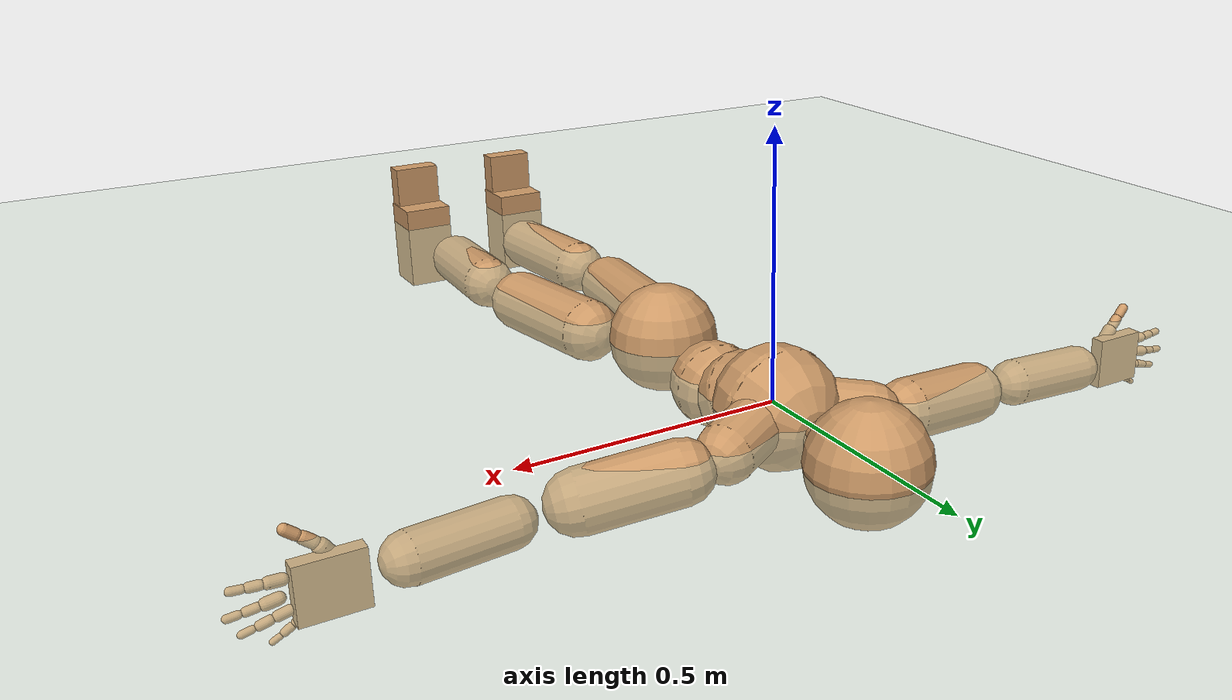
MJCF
<mujoco model="humanoid">
  <compiler coordinate="local"/>
  <default>
    <joint damping="0.0" armature="0.01" stiffness="0.0" limited="true"/>
    <geom conaffinity="1" condim="3" contype="7" margin="0.001" rgba="0.8 0.6 .4 1"/>
  </default>
  <asset>
    <texture type="skybox" builtin="gradient" rgb1=".4 .5 .6" rgb2="0 0 0" width="100" height="100"/>
    <texture builtin="flat" height="1278" mark="cross" markrgb="1 1 1" name="texgeom" random="0.01" rgb1="0.8 0.6 0.4" rgb2="0.8 0.6 0.4" type="cube" width="127"/>
    <texture builtin="checker" height="100" name="texplane" rgb1="0 0 0" rgb2="0.8 0.8 0.8" type="2d" width="100"/>
    <material name="MatPlane" reflectance="0.5" shininess="1" specular="1" texrepeat="60 60" texture="texplane"/>
    <material name="geom" texture="texgeom" texuniform="true"/>
  </asset>
  <worldbody>
    <light cutoff="100" diffuse="1 1 1" dir="-0 0 -1.3" directional="true" exponent="1" pos="0 0 1.3" specular=".1 .1 .1"/>
    <geom conaffinity="1" condim="3" name="floor" pos="0 0 0" rgba="0.8 0.9 0.8 1" size="100 100 .2" type="plane" material="MatPlane"/>
    <body name="Pelvis" pos="0.0031 -0.3905 -0.0025">
      <freejoint name="Pelvis"/>
      <geom type="sphere" contype="1" conaffinity="1" density="4629.6296296296305" size="0.1097" pos="0.0000 0.0000 0.0000" name="Pelvis"/>
      <body name="L_Hip" pos="0.0624 -0.1037 -0.0301">
        <joint name="L_Hip_x" type="hinge" pos="0 0 0" axis="1 0 0" user="250 2.5 1 500 10 2" armature="0.01" range="-90.0000 90.0000" damping="0" stiffness="0"/>
        <joint name="L_Hip_y" type="hinge" pos="0 0 0" axis="0 1 0" user="250 2.5 1 500 10 2" armature="0.01" range="-90.0000 90.0000" damping="0" stiffness="0"/>
        <joint name="L_Hip_z" type="hinge" pos="0 0 0" axis="0 0 1" user="250 2.5 1 500 10 2" armature="0.01" range="-90.0000 90.0000" damping="0" stiffness="0"/>
        <geom type="capsule" contype="1" conaffinity="1" density="2040.816327" fromto="0.0126 -0.0875 -0.0019 0.0504 -0.3499 -0.0076" size="0.0657" name="L_Hip"/>
        <body name="L_Knee" pos="0.0629 -0.4373 -0.0096">
          <joint name="L_Knee_x" type="hinge" pos="0 0 0" axis="1 0 0" user="250 2.5 1 500 10 2" armature="0.01" range="-180.0000 180.0000" damping="0" stiffness="0"/>
          <joint name="L_Knee_y" type="hinge" pos="0 0 0" axis="0 1 0" user="250 2.5 1 500 10 2" armature="0.01" range="-5.6250 5.6250" damping="0" stiffness="0"/>
          <joint name="L_Knee_z" type="hinge" pos="0 0 0" axis="0 0 1" user="250 2.5 1 500 10 2" armature="0.01" range="-5.6250 5.6250" damping="0" stiffness="0"/>
          <geom type="capsule" contype="1" conaffinity="1" density="1234.567901" fromto="-0.0095 -0.0943 -0.0073 -0.0380 -0.3774 -0.0291" size="0.0583" name="L_Knee"/>
          <body name="L_Ankle" pos="-0.0475 -0.4717 -0.0364">
            <joint name="L_Ankle_x" type="hinge" pos="0 0 0" axis="1 0 0" user="150 2.5 1 500 10 2" armature="0.01" range="-90.0000 90.0000" damping="0" stiffness="0"/>
            <joint name="L_Ankle_y" type="hinge" pos="0 0 0" axis="0 1 0" user="150 2.5 1 500 10 2" armature="0.01" range="-90.0000 90.0000" damping="0" stiffness="0"/>
            <joint name="L_Ankle_z" type="hinge" pos="0 0 0" axis="0 0 1" user="150 2.5 1 500 10 2" armature="0.01" range="-90.0000 90.0000" damping="0" stiffness="0"/>
            <geom type="box" density="453.221536" pos="0.0464 -0.0357 0.0263" size="0.0557 0.0532 0.098" quat="1.0000 0.0000 0.0000 0.0000" name="L_Ankle"/>
            <body name="L_Toe" pos="0.0537 -0.07 0.1341">
              <joint name="L_Toe_x" type="hinge" pos="0 0 0" axis="1 0 0" user="150 1 1 500 1 1" armature="0.01" range="-90.0000 90.0000" damping="0" stiffness="0"/>
              <joint name="L_Toe_y" type="hinge" pos="0 0 0" axis="0 1 0" user="150 1 1 500 1 1" armature="0.01" range="-45.0000 45.0000" damping="0" stiffness="0"/>
              <joint name="L_Toe_z" type="hinge" pos="0 0 0" axis="0 0 1" user="150 1 1 500 1 1" armature="0.01" range="-45.0000 45.0000" damping="0" stiffness="0"/>
              <geom type="box" density="420.681294" pos="-0.0074 0.0035 0.0290" size="0.0531 0.0224 0.0555" quat="1.0000 0.0000 0.0000 0.0000" name="L_Toe"/>
            </body>
          </body>
        </body>
      </body>
      <body name="R_Hip" pos="-0.0676 -0.1165 -0.0241">
        <joint name="R_Hip_x" type="hinge" pos="0 0 0" axis="1 0 0" user="250 2.5 1 500 10 2" armature="0.01" range="-90.0000 90.0000" damping="0" stiffness="0"/>
        <joint name="R_Hip_y" type="hinge" pos="0 0 0" axis="0 1 0" user="250 2.5 1 500 10 2" armature="0.01" range="-90.0000 90.0000" damping="0" stiffness="0"/>
        <joint name="R_Hip_z" type="hinge" pos="0 0 0" axis="0 0 1" user="250 2.5 1 500 10 2" armature="0.01" range="-90.0000 90.0000" damping="0" stiffness="0"/>
        <geom type="capsule" contype="1" conaffinity="1" density="2040.816327" fromto="-0.0103 -0.0836 -0.0037 -0.0413 -0.3346 -0.0147" size="0.0648" name="R_Hip"/>
        <body name="R_Knee" pos="-0.0516 -0.4182 -0.0184">
          <joint name="R_Knee_x" type="hinge" pos="0 0 0" axis="1 0 0" user="250 2.5 1 500 10 2" armature="0.01" range="-180.0000 180.0000" damping="0" stiffness="0"/>
          <joint name="R_Knee_y" type="hinge" pos="0 0 0" axis="0 1 0" user="250 2.5 1 500 10 2" armature="0.01" range="-5.6250 5.6250" damping="0" stiffness="0"/>
          <joint name="R_Knee_z" type="hinge" pos="0 0 0" axis="0 0 1" user="250 2.5 1 500 10 2" armature="0.01" range="-5.6250 5.6250" damping="0" stiffness="0"/>
          <geom type="capsule" contype="1" conaffinity="1" density="1234.567901" fromto="0.0033 -0.0963 -0.0046 0.0133 -0.3852 -0.0184" size="0.06" name="R_Knee"/>
          <body name="R_Ankle" pos="0.0166 -0.4815 -0.023">
            <joint name="R_Ankle_x" type="hinge" pos="0 0 0" axis="1 0 0" user="150 1 1 500 10 2" armature="0.01" range="-90.0000 90.0000" damping="0" stiffness="0"/>
            <joint name="R_Ankle_y" type="hinge" pos="0 0 0" axis="0 1 0" user="150 1 1 500 10 2" armature="0.01" range="-90.0000 90.0000" damping="0" stiffness="0"/>
            <joint name="R_Ankle_z" type="hinge" pos="0 0 0" axis="0 0 1" user="150 1 1 500 10 2" armature="0.01" range="-90.0000 90.0000" damping="0" stiffness="0"/>
            <geom type="box" density="453.206679" pos="-0.0276 -0.0323 0.0159" size="0.0557 0.0532 0.098" quat="1.0000 0.0000 0.0000 0.0000" name="R_Ankle"/>
            <body name="R_Toe" pos="-0.0435 -0.0693 0.1348">
              <joint name="R_Toe_x" type="hinge" pos="0 0 0" axis="1 0 0" user="150 1 1 500 1 1" armature="0.01" range="-90.0000 90.0000" damping="0" stiffness="0"/>
              <joint name="R_Toe_y" type="hinge" pos="0 0 0" axis="0 1 0" user="150 1 1 500 1 1" armature="0.01" range="-45.0000 45.0000" damping="0" stiffness="0"/>
              <joint name="R_Toe_z" type="hinge" pos="0 0 0" axis="0 0 1" user="150 1 1 500 1 1" armature="0.01" range="-45.0000 45.0000" damping="0" stiffness="0"/>
              <geom type="box" density="420.68795" pos="0.0159 0.0061 0.0179" size="0.0531 0.0224 0.0555" quat="1.0000 0.0000 0.0000 0.0000" name="R_Toe"/>
            </body>
          </body>
        </body>
      </body>
      <body name="Torso" pos="-0.0032 0.125 -0.0279">
        <joint name="Torso_x" type="hinge" pos="0 0 0" axis="1 0 0" user="500 5 1 500 10 2" armature="0.01" range="-60.0000 60.0000" damping="0" stiffness="0"/>
        <joint name="Torso_y" type="hinge" pos="0 0 0" axis="0 1 0" user="500 5 1 500 10 2" armature="0.01" range="-60.0000 60.0000" damping="0" stiffness="0"/>
        <joint name="Torso_z" type="hinge" pos="0 0 0" axis="0 0 1" user="500 5 1 500 10 2" armature="0.01" range="-60.0000 60.0000" damping="0" stiffness="0"/>
        <geom type="capsule" contype="1" conaffinity="1" density="2040.816327" fromto="0.0052 0.0683 -0.0015 0.0064 0.0835 -0.0018" size="0.0824" name="Torso"/>
        <body name="Spine" pos="0.0117 0.1518 -0.0033">
          <joint name="Spine_x" type="hinge" pos="0 0 0" axis="1 0 0" user="500 5 1 500 10 2" armature="0.01" range="-60.0000 60.0000" damping="0" stiffness="0"/>
          <joint name="Spine_y" type="hinge" pos="0 0 0" axis="0 1 0" user="500 5 1 500 10 2" armature="0.01" range="-60.0000 60.0000" damping="0" stiffness="0"/>
          <joint name="Spine_z" type="hinge" pos="0 0 0" axis="0 0 1" user="500 5 1 500 10 2" armature="0.01" range="-60.0000 60.0000" damping="0" stiffness="0"/>
          <geom type="capsule" contype="1" conaffinity="1" density="2040.816327" fromto="-0.0058 0.0282 0.0146 -0.0071 0.0345 0.0178" size="0.087" name="Spine"/>
          <body name="Chest" pos="-0.0129 0.0627 0.0324">
            <joint name="Chest_x" type="hinge" pos="0 0 0" axis="1 0 0" user="500 5 1 500 10 2" armature="0.01" range="-60.0000 60.0000" damping="0" stiffness="0"/>
            <joint name="Chest_y" type="hinge" pos="0 0 0" axis="0 1 0" user="500 5 1 500 10 2" armature="0.01" range="-60.0000 60.0000" damping="0" stiffness="0"/>
            <joint name="Chest_z" type="hinge" pos="0 0 0" axis="0 0 1" user="500 5 1 500 10 2" armature="0.01" range="-60.0000 60.0000" damping="0" stiffness="0"/>
            <geom type="capsule" contype="1" conaffinity="1" density="2040.816327" fromto="-0.0023 0.0552 -0.0052 -0.0028 0.0674 -0.0064" size="0.1147" name="Chest"/>
            <body name="Neck" pos="-0.0136 0.1811 -0.0235">
              <joint name="Neck_x" type="hinge" pos="0 0 0" axis="1 0 0" user="150 1 1 250 50 4" armature="0.01" range="-180.0000 180.0000" damping="0" stiffness="0"/>
              <joint name="Neck_y" type="hinge" pos="0 0 0" axis="0 1 0" user="150 1 1 250 50 4" armature="0.01" range="-180.0000 180.0000" damping="0" stiffness="0"/>
              <joint name="Neck_z" type="hinge" pos="0 0 0" axis="0 0 1" user="150 1 1 250 50 4" armature="0.01" range="-180.0000 180.0000" damping="0" stiffness="0"/>
              <geom type="capsule" contype="1" conaffinity="1" density="1000" fromto="0.0056 0.0336 0.0063 0.0225 0.1344 0.0254" size="0.0464" name="Neck"/>
              <body name="Head" pos="0.0281 0.1681 0.0317">
                <joint name="Head_x" type="hinge" pos="0 0 0" axis="1 0 0" user="150 1 1 250 50 4" armature="0.01" range="-90.0000 90.0000" damping="0" stiffness="0"/>
                <joint name="Head_y" type="hinge" pos="0 0 0" axis="0 1 0" user="150 1 1 250 50 4" armature="0.01" range="-90.0000 90.0000" damping="0" stiffness="0"/>
                <joint name="Head_z" type="hinge" pos="0 0 0" axis="0 0 1" user="150 1 1 250 50 4" armature="0.01" range="-90.0000 90.0000" damping="0" stiffness="0"/>
                <geom type="sphere" contype="1" conaffinity="1" density="1000" size="0.1088" pos="0.0000 0.0000 0.0000" name="Head"/>
              </body>
            </body>
            <body name="L_Thorax" pos="0.0506 0.0939 -0.0019">
              <joint name="L_Thorax_x" type="hinge" pos="0 0 0" axis="1 0 0" user="200 2 1 500 50 4" armature="0.01" range="-180.0000 180.0000" damping="0" stiffness="0"/>
              <joint name="L_Thorax_y" type="hinge" pos="0 0 0" axis="0 1 0" user="200 2 1 500 50 4" armature="0.01" range="-180.0000 180.0000" damping="0" stiffness="0"/>
              <joint name="L_Thorax_z" type="hinge" pos="0 0 0" axis="0 0 1" user="200 2 1 500 50 4" armature="0.01" range="-180.0000 180.0000" damping="0" stiffness="0"/>
              <geom type="capsule" contype="1" conaffinity="1" density="1000" fromto="0.0270 0.0130 -0.0045 0.1080 0.0522 -0.0179" size="0.0551" name="L_Thorax"/>
              <body name="L_Shoulder" pos="0.1349 0.0652 -0.0224">
                <joint name="L_Shoulder_x" type="hinge" pos="0 0 0" axis="1 0 0" user="200 2 1 500 50 4" armature="0.01" range="-180.0000 180.0000" damping="0" stiffness="0"/>
                <joint name="L_Shoulder_y" type="hinge" pos="0 0 0" axis="0 1 0" user="200 2 1 500 50 4" armature="0.01" range="-180.0000 180.0000" damping="0" stiffness="0"/>
                <joint name="L_Shoulder_z" type="hinge" pos="0 0 0" axis="0 0 1" user="200 2 1 500 50 4" armature="0.01" range="-180.0000 180.0000" damping="0" stiffness="0"/>
                <geom type="capsule" contype="1" conaffinity="1" density="1000" fromto="0.0564 -0.0163 -0.0095 0.2257 -0.0652 -0.0378" size="0.0588" name="L_Shoulder"/>
                <body name="L_Elbow" pos="0.2821 -0.0815 -0.0473">
                  <joint name="L_Elbow_x" type="hinge" pos="0 0 0" axis="1 0 0" user="150 1 1 150 10 2" armature="0.01" range="-720.0000 720.0000" damping="0" stiffness="0"/>
                  <joint name="L_Elbow_y" type="hinge" pos="0 0 0" axis="0 1 0" user="150 1 1 150 10 2" armature="0.01" range="-720.0000 720.0000" damping="0" stiffness="0"/>
                  <joint name="L_Elbow_z" type="hinge" pos="0 0 0" axis="0 0 1" user="150 1 1 150 10 2" armature="0.01" range="-720.0000 720.0000" damping="0" stiffness="0"/>
                  <geom type="capsule" contype="1" conaffinity="1" density="1000" fromto="0.0582 0.0057 -0.0001 0.2326 0.0229 -0.0004" size="0.0453" name="L_Elbow"/>
                  <body name="L_Wrist" pos="0.2908 0.0286 -0.0005">
                    <joint name="L_Wrist_x" type="hinge" pos="0 0 0" axis="1 0 0" user="100 1 1 150 1 1" armature="0.01" range="-180.0000 180.0000" damping="0" stiffness="0"/>
                    <joint name="L_Wrist_y" type="hinge" pos="0 0 0" axis="0 1 0" user="100 1 1 150 1 1" armature="0.01" range="-180.0000 180.0000" damping="0" stiffness="0"/>
                    <joint name="L_Wrist_z" type="hinge" pos="0 0 0" axis="0 0 1" user="100 1 1 150 1 1" armature="0.01" range="-180.0000 180.0000" damping="0" stiffness="0"/>
                    <geom type="box" density="1204.915855" pos="0.0618 -0.0019 -0.0035" size="0.057 0.0139 0.0513" quat="1.0000 0.0000 0.0000 0.0000" name="L_Wrist"/>
                    <body name="L_Index1" pos="0.1201 -0.0096 0.0213">
                      <joint name="L_Index1_x" type="hinge" pos="0 0 0" axis="1 0 0" user="100 10 1 150" armature="0.01" range="-180.0000 180.0000" damping="0" stiffness="0"/>
                      <joint name="L_Index1_y" type="hinge" pos="0 0 0" axis="0 1 0" user="100 10 1 150" armature="0.01" range="-180.0000 180.0000" damping="0" stiffness="0"/>
                      <joint name="L_Index1_z" type="hinge" pos="0 0 0" axis="0 0 1" user="100 10 1 150" armature="0.01" range="-180.0000 180.0000" damping="0" stiffness="0"/>
                      <geom type="capsule" contype="1" conaffinity="1" density="1000" fromto="0.0070 0.0005 0.0006 0.0280 0.0022 0.0023" size="0.0101" name="L_Index1"/>
                      <body name="L_Index2" pos="0.035 0.0027 0.0029">
                        <joint name="L_Index2_x" type="hinge" pos="0 0 0" axis="1 0 0" user="100 10 1 150" armature="0.01" range="-180.0000 180.0000" damping="0" stiffness="0"/>
                        <joint name="L_Index2_y" type="hinge" pos="0 0 0" axis="0 1 0" user="100 10 1 150" armature="0.01" range="-180.0000 180.0000" damping="0" stiffness="0"/>
                        <joint name="L_Index2_z" type="hinge" pos="0 0 0" axis="0 0 1" user="100 10 1 150" armature="0.01" range="-180.0000 180.0000" damping="0" stiffness="0"/>
                        <geom type="capsule" contype="1" conaffinity="1" density="1000" fromto="0.0049 -0.0005 -0.0001 0.0197 -0.0021 -0.0002" size="0.0084" name="L_Index2"/>
                        <body name="L_Index3" pos="0.0246 -0.0026 -0.0003">
                          <joint name="L_Index3_x" type="hinge" pos="0 0 0" axis="1 0 0" user="100 10 1 150" armature="0.01" range="-180.0000 180.0000" damping="0" stiffness="0"/>
                          <joint name="L_Index3_y" type="hinge" pos="0 0 0" axis="0 1 0" user="100 10 1 150" armature="0.01" range="-180.0000 180.0000" damping="0" stiffness="0"/>
                          <joint name="L_Index3_z" type="hinge" pos="0 0 0" axis="0 0 1" user="100 10 1 150" armature="0.01" range="-180.0000 180.0000" damping="0" stiffness="0"/>
                          <geom type="capsule" contype="1" conaffinity="1" density="1000" fromto="0.0053 -0.0001 0.0003 0.0213 -0.0005 0.0014" size="0.0071" name="L_Index3"/>
                        </body>
                      </body>
                    </body>
                    <body name="L_Middle1" pos="0.129 -0.0069 -0.0048">
                      <joint name="L_Middle1_x" type="hinge" pos="0 0 0" axis="1 0 0" user="100 10 1 150" armature="0.01" range="-180.0000 180.0000" damping="0" stiffness="0"/>
                      <joint name="L_Middle1_y" type="hinge" pos="0 0 0" axis="0 1 0" user="100 10 1 150" armature="0.01" range="-180.0000 180.0000" damping="0" stiffness="0"/>
                      <joint name="L_Middle1_z" type="hinge" pos="0 0 0" axis="0 0 1" user="100 10 1 150" armature="0.01" range="-180.0000 180.0000" damping="0" stiffness="0"/>
                      <geom type="capsule" contype="1" conaffinity="1" density="1000" fromto="0.0067 0.0002 -0.0009 0.0269 0.0008 -0.0035" size="0.0104" name="L_Middle1"/>
                      <body name="L_Middle2" pos="0.0337 0.001 -0.0044">
                        <joint name="L_Middle2_x" type="hinge" pos="0 0 0" axis="1 0 0" user="100 10 1 150" armature="0.01" range="-180.0000 180.0000" damping="0" stiffness="0"/>
                        <joint name="L_Middle2_y" type="hinge" pos="0 0 0" axis="0 1 0" user="100 10 1 150" armature="0.01" range="-180.0000 180.0000" damping="0" stiffness="0"/>
                        <joint name="L_Middle2_z" type="hinge" pos="0 0 0" axis="0 0 1" user="100 10 1 150" armature="0.01" range="-180.0000 180.0000" damping="0" stiffness="0"/>
                        <geom type="capsule" contype="1" conaffinity="1" density="1000" fromto="0.0052 -0.0005 -0.0009 0.0207 -0.0019 -0.0037" size="0.0077" name="L_Middle2"/>
                        <body name="L_Middle3" pos="0.0258 -0.0023 -0.0046">
                          <joint name="L_Middle3_x" type="hinge" pos="0 0 0" axis="1 0 0" user="100 10 1 150" armature="0.01" range="-180.0000 180.0000" damping="0" stiffness="0"/>
                          <joint name="L_Middle3_y" type="hinge" pos="0 0 0" axis="0 1 0" user="100 10 1 150" armature="0.01" range="-180.0000 180.0000" damping="0" stiffness="0"/>
                          <joint name="L_Middle3_z" type="hinge" pos="0 0 0" axis="0 0 1" user="100 10 1 150" armature="0.01" range="-180.0000 180.0000" damping="0" stiffness="0"/>
                          <geom type="capsule" contype="1" conaffinity="1" density="1000" fromto="0.0056 -0.0001 -0.0005 0.0223 -0.0003 -0.0021" size="0.0068" name="L_Middle3"/>
                        </body>
                      </body>
                    </body>
                    <body name="L_Pinky1" pos="0.1006 -0.016 -0.0491">
                      <joint name="L_Pinky1_x" type="hinge" pos="0 0 0" axis="1 0 0" user="100 10 1 150" armature="0.01" range="-180.0000 180.0000" damping="0" stiffness="0"/>
                      <joint name="L_Pinky1_y" type="hinge" pos="0 0 0" axis="0 1 0" user="100 10 1 150" armature="0.01" range="-180.0000 180.0000" damping="0" stiffness="0"/>
                      <joint name="L_Pinky1_z" type="hinge" pos="0 0 0" axis="0 0 1" user="100 10 1 150" armature="0.01" range="-180.0000 180.0000" damping="0" stiffness="0"/>
                      <geom type="capsule" contype="1" conaffinity="1" density="1000" fromto="0.0035 -0.0003 -0.0026 0.0140 -0.0010 -0.0104" size="0.0073" name="L_Pinky1"/>
                      <body name="L_Pinky2" pos="0.0176 -0.0013 -0.0129">
                        <joint name="L_Pinky2_x" type="hinge" pos="0 0 0" axis="1 0 0" user="100 10 1 150" armature="0.01" range="-180.0000 180.0000" damping="0" stiffness="0"/>
                        <joint name="L_Pinky2_y" type="hinge" pos="0 0 0" axis="0 1 0" user="100 10 1 150" armature="0.01" range="-180.0000 180.0000" damping="0" stiffness="0"/>
                        <joint name="L_Pinky2_z" type="hinge" pos="0 0 0" axis="0 0 1" user="100 10 1 150" armature="0.01" range="-180.0000 180.0000" damping="0" stiffness="0"/>
                        <geom type="capsule" contype="1" conaffinity="1" density="1000" fromto="0.0034 -0.0004 -0.0024 0.0138 -0.0016 -0.0096" size="0.007" name="L_Pinky2"/>
                        <body name="L_Pinky3" pos="0.0172 -0.002 -0.012">
                          <joint name="L_Pinky3_x" type="hinge" pos="0 0 0" axis="1 0 0" user="100 10 1 150" armature="0.01" range="-180.0000 180.0000" damping="0" stiffness="0"/>
                          <joint name="L_Pinky3_y" type="hinge" pos="0 0 0" axis="0 1 0" user="100 10 1 150" armature="0.01" range="-180.0000 180.0000" damping="0" stiffness="0"/>
                          <joint name="L_Pinky3_z" type="hinge" pos="0 0 0" axis="0 0 1" user="100 10 1 150" armature="0.01" range="-180.0000 180.0000" damping="0" stiffness="0"/>
                          <geom type="capsule" contype="1" conaffinity="1" density="1000" fromto="0.0038 0.0000 -0.0020 0.0154 0.0000 -0.0080" size="0.0053" name="L_Pinky3"/>
                        </body>
                      </body>
                    </body>
                    <body name="L_Ring1" pos="0.1158 -0.0102 -0.0309">
                      <joint name="L_Ring1_x" type="hinge" pos="0 0 0" axis="1 0 0" user="100 10 1 150" armature="0.01" range="-180.0000 180.0000" damping="0" stiffness="0"/>
                      <joint name="L_Ring1_y" type="hinge" pos="0 0 0" axis="0 1 0" user="100 10 1 150" armature="0.01" range="-180.0000 180.0000" damping="0" stiffness="0"/>
                      <joint name="L_Ring1_z" type="hinge" pos="0 0 0" axis="0 0 1" user="100 10 1 150" armature="0.01" range="-180.0000 180.0000" damping="0" stiffness="0"/>
                      <geom type="capsule" contype="1" conaffinity="1" density="1000" fromto="0.0063 0.0003 -0.0011 0.0250 0.0014 -0.0046" size="0.0088" name="L_Ring1"/>
                      <body name="L_Ring2" pos="0.0313 0.0017 -0.0057">
                        <joint name="L_Ring2_x" type="hinge" pos="0 0 0" axis="1 0 0" user="100 10 1 150" armature="0.01" range="-180.0000 180.0000" damping="0" stiffness="0"/>
                        <joint name="L_Ring2_y" type="hinge" pos="0 0 0" axis="0 1 0" user="100 10 1 150" armature="0.01" range="-180.0000 180.0000" damping="0" stiffness="0"/>
                        <joint name="L_Ring2_z" type="hinge" pos="0 0 0" axis="0 0 1" user="100 10 1 150" armature="0.01" range="-180.0000 180.0000" damping="0" stiffness="0"/>
                        <geom type="capsule" contype="1" conaffinity="1" density="1000" fromto="0.0050 -0.0003 -0.0016 0.0201 -0.0013 -0.0063" size="0.0081" name="L_Ring2"/>
                        <body name="L_Ring3" pos="0.0251 -0.0017 -0.0078">
                          <joint name="L_Ring3_x" type="hinge" pos="0 0 0" axis="1 0 0" user="100 10 1 150" armature="0.01" range="-180.0000 180.0000" damping="0" stiffness="0"/>
                          <joint name="L_Ring3_y" type="hinge" pos="0 0 0" axis="0 1 0" user="100 10 1 150" armature="0.01" range="-180.0000 180.0000" damping="0" stiffness="0"/>
                          <joint name="L_Ring3_z" type="hinge" pos="0 0 0" axis="0 0 1" user="100 10 1 150" armature="0.01" range="-180.0000 180.0000" damping="0" stiffness="0"/>
                          <geom type="capsule" contype="1" conaffinity="1" density="1000" fromto="0.0054 0.0001 -0.0012 0.0217 0.0003 -0.0047" size="0.0063" name="L_Ring3"/>
                        </body>
                      </body>
                    </body>
                    <body name="L_Thumb1" pos="0.0494 -0.0209 0.0294">
                      <joint name="L_Thumb1_x" type="hinge" pos="0 0 0" axis="1 0 0" user="100 10 1 150" armature="0.01" range="-180.0000 180.0000" damping="0" stiffness="0"/>
                      <joint name="L_Thumb1_y" type="hinge" pos="0 0 0" axis="0 1 0" user="100 10 1 150" armature="0.01" range="-180.0000 180.0000" damping="0" stiffness="0"/>
                      <joint name="L_Thumb1_z" type="hinge" pos="0 0 0" axis="0 0 1" user="100 10 1 150" armature="0.01" range="-180.0000 180.0000" damping="0" stiffness="0"/>
                      <geom type="capsule" contype="1" conaffinity="1" density="1000" fromto="0.0039 0.0002 0.0056 0.0155 0.0009 0.0224" size="0.0138" name="L_Thumb1"/>
                      <body name="L_Thumb2" pos="0.0194 0.0011 0.028">
                        <joint name="L_Thumb2_x" type="hinge" pos="0 0 0" axis="1 0 0" user="100 10 1 150" armature="0.01" range="-180.0000 180.0000" damping="0" stiffness="0"/>
                        <joint name="L_Thumb2_y" type="hinge" pos="0 0 0" axis="0 1 0" user="100 10 1 150" armature="0.01" range="-180.0000 180.0000" damping="0" stiffness="0"/>
                        <joint name="L_Thumb2_z" type="hinge" pos="0 0 0" axis="0 0 1" user="100 10 1 150" armature="0.01" range="-180.0000 180.0000" damping="0" stiffness="0"/>
                        <geom type="capsule" contype="1" conaffinity="1" density="1000" fromto="0.0046 -0.0011 0.0034 0.0186 -0.0046 0.0137" size="0.0108" name="L_Thumb2"/>
                        <body name="L_Thumb3" pos="0.0232 -0.0057 0.0171">
                          <joint name="L_Thumb3_x" type="hinge" pos="0 0 0" axis="1 0 0" user="100 10 1 150" armature="0.01" range="-180.0000 180.0000" damping="0" stiffness="0"/>
                          <joint name="L_Thumb3_y" type="hinge" pos="0 0 0" axis="0 1 0" user="100 10 1 150" armature="0.01" range="-180.0000 180.0000" damping="0" stiffness="0"/>
                          <joint name="L_Thumb3_z" type="hinge" pos="0 0 0" axis="0 0 1" user="100 10 1 150" armature="0.01" range="-180.0000 180.0000" damping="0" stiffness="0"/>
                          <geom type="capsule" contype="1" conaffinity="1" density="1000" fromto="0.0050 -0.0007 0.0038 0.0202 -0.0030 0.0153" size="0.0097" name="L_Thumb3"/>
                        </body>
                      </body>
                    </body>
                  </body>
                </body>
              </body>
            </body>
            <body name="R_Thorax" pos="-0.0525 0.0928 -0.0095">
              <joint name="R_Thorax_x" type="hinge" pos="0 0 0" axis="1 0 0" user="200 2 1 150 10 2" armature="0.01" range="-180.0000 180.0000" damping="0" stiffness="0"/>
              <joint name="R_Thorax_y" type="hinge" pos="0 0 0" axis="0 1 0" user="200 2 1 150 10 2" armature="0.01" range="-180.0000 180.0000" damping="0" stiffness="0"/>
              <joint name="R_Thorax_z" type="hinge" pos="0 0 0" axis="0 0 1" user="200 2 1 150 10 2" armature="0.01" range="-180.0000 180.0000" damping="0" stiffness="0"/>
              <geom type="capsule" contype="1" conaffinity="1" density="1000" fromto="-0.0235 0.0121 -0.0037 -0.0939 0.0484 -0.0149" size="0.0605" name="R_Thorax"/>
              <body name="R_Shoulder" pos="-0.1174 0.0605 -0.0187">
                <joint name="R_Shoulder_x" type="hinge" pos="0 0 0" axis="1 0 0" user="200 2 1 250 10 2" armature="0.01" range="-180.0000 180.0000" damping="0" stiffness="0"/>
                <joint name="R_Shoulder_y" type="hinge" pos="0 0 0" axis="0 1 0" user="200 2 1 250 10 2" armature="0.01" range="-180.0000 180.0000" damping="0" stiffness="0"/>
                <joint name="R_Shoulder_z" type="hinge" pos="0 0 0" axis="0 0 1" user="200 2 1 250 10 2" armature="0.01" range="-180.0000 180.0000" damping="0" stiffness="0"/>
                <geom type="capsule" contype="1" conaffinity="1" density="1000" fromto="-0.0603 -0.0082 -0.0060 -0.2411 -0.0327 -0.0238" size="0.0588" name="R_Shoulder"/>
                <body name="R_Elbow" pos="-0.3014 -0.0408 -0.0298">
                  <joint name="R_Elbow_x" type="hinge" pos="0 0 0" axis="1 0 0" user="150 1 1 150 10 2" armature="0.01" range="-720.0000 720.0000" damping="0" stiffness="0"/>
                  <joint name="R_Elbow_y" type="hinge" pos="0 0 0" axis="0 1 0" user="150 1 1 150 10 2" armature="0.01" range="-720.0000 720.0000" damping="0" stiffness="0"/>
                  <joint name="R_Elbow_z" type="hinge" pos="0 0 0" axis="0 0 1" user="150 1 1 150 10 2" armature="0.01" range="-720.0000 720.0000" damping="0" stiffness="0"/>
                  <geom type="capsule" contype="1" conaffinity="1" density="1000" fromto="-0.0574 -0.0006 -0.0029 -0.2295 -0.0022 -0.0116" size="0.0457" name="R_Elbow"/>
                  <body name="R_Wrist" pos="-0.2869 -0.0028 -0.0145">
                    <joint name="R_Wrist_x" type="hinge" pos="0 0 0" axis="1 0 0" user="100 1 1 150 1 1" armature="0.01" range="-180.0000 180.0000" damping="0" stiffness="0"/>
                    <joint name="R_Wrist_y" type="hinge" pos="0 0 0" axis="0 1 0" user="100 1 1 150 1 1" armature="0.01" range="-180.0000 180.0000" damping="0" stiffness="0"/>
                    <joint name="R_Wrist_z" type="hinge" pos="0 0 0" axis="0 0 1" user="100 1 1 150 1 1" armature="0.01" range="-180.0000 180.0000" damping="0" stiffness="0"/>
                    <geom type="box" density="1228.841003" pos="-0.0632 -0.0054 -0.0031" size="0.0538 0.0139 0.0513" quat="1.0000 0.0000 0.0000 0.0000" name="R_Wrist"/>
                    <body name="R_Index1" pos="-0.1178 -0.0131 0.0217">
                      <joint name="R_Index1_x" type="hinge" pos="0 0 0" axis="1 0 0" user="100 10 1 150" armature="0.01" range="-180.0000 180.0000" damping="0" stiffness="0"/>
                      <joint name="R_Index1_y" type="hinge" pos="0 0 0" axis="0 1 0" user="100 10 1 150" armature="0.01" range="-180.0000 180.0000" damping="0" stiffness="0"/>
                      <joint name="R_Index1_z" type="hinge" pos="0 0 0" axis="0 0 1" user="100 10 1 150" armature="0.01" range="-180.0000 180.0000" damping="0" stiffness="0"/>
                      <geom type="capsule" contype="1" conaffinity="1" density="1000" fromto="-0.0070 0.0005 0.0006 -0.0280 0.0022 0.0023" size="0.0101" name="R_Index1"/>
                      <body name="R_Index2" pos="-0.035 0.0027 0.0029">
                        <joint name="R_Index2_x" type="hinge" pos="0 0 0" axis="1 0 0" user="100 10 1 150" armature="0.01" range="-180.0000 180.0000" damping="0" stiffness="0"/>
                        <joint name="R_Index2_y" type="hinge" pos="0 0 0" axis="0 1 0" user="100 10 1 150" armature="0.01" range="-180.0000 180.0000" damping="0" stiffness="0"/>
                        <joint name="R_Index2_z" type="hinge" pos="0 0 0" axis="0 0 1" user="100 10 1 150" armature="0.01" range="-180.0000 180.0000" damping="0" stiffness="0"/>
                        <geom type="capsule" contype="1" conaffinity="1" density="1000" fromto="-0.0049 -0.0005 -0.0001 -0.0197 -0.0021 -0.0002" size="0.0084" name="R_Index2"/>
                        <body name="R_Index3" pos="-0.0246 -0.0026 -0.0003">
                          <joint name="R_Index3_x" type="hinge" pos="0 0 0" axis="1 0 0" user="100 10 1 150" armature="0.01" range="-180.0000 180.0000" damping="0" stiffness="0"/>
                          <joint name="R_Index3_y" type="hinge" pos="0 0 0" axis="0 1 0" user="100 10 1 150" armature="0.01" range="-180.0000 180.0000" damping="0" stiffness="0"/>
                          <joint name="R_Index3_z" type="hinge" pos="0 0 0" axis="0 0 1" user="100 10 1 150" armature="0.01" range="-180.0000 180.0000" damping="0" stiffness="0"/>
                          <geom type="capsule" contype="1" conaffinity="1" density="1000" fromto="-0.0045 -0.0001 0.0003 -0.0181 -0.0005 0.0014" size="0.0074" name="R_Index3"/>
                        </body>
                      </body>
                    </body>
                    <body name="R_Middle1" pos="-0.1267 -0.0104 -0.0044">
                      <joint name="R_Middle1_x" type="hinge" pos="0 0 0" axis="1 0 0" user="100 10 1 150" armature="0.01" range="-180.0000 180.0000" damping="0" stiffness="0"/>
                      <joint name="R_Middle1_y" type="hinge" pos="0 0 0" axis="0 1 0" user="100 10 1 150" armature="0.01" range="-180.0000 180.0000" damping="0" stiffness="0"/>
                      <joint name="R_Middle1_z" type="hinge" pos="0 0 0" axis="0 0 1" user="100 10 1 150" armature="0.01" range="-180.0000 180.0000" damping="0" stiffness="0"/>
                      <geom type="capsule" contype="1" conaffinity="1" density="1000" fromto="-0.0067 0.0002 -0.0009 -0.0269 0.0008 -0.0035" size="0.0104" name="R_Middle1"/>
                      <body name="R_Middle2" pos="-0.0337 0.001 -0.0044">
                        <joint name="R_Middle2_x" type="hinge" pos="0 0 0" axis="1 0 0" user="100 10 1 150" armature="0.01" range="-180.0000 180.0000" damping="0" stiffness="0"/>
                        <joint name="R_Middle2_y" type="hinge" pos="0 0 0" axis="0 1 0" user="100 10 1 150" armature="0.01" range="-180.0000 180.0000" damping="0" stiffness="0"/>
                        <joint name="R_Middle2_z" type="hinge" pos="0 0 0" axis="0 0 1" user="100 10 1 150" armature="0.01" range="-180.0000 180.0000" damping="0" stiffness="0"/>
                        <geom type="capsule" contype="1" conaffinity="1" density="1000" fromto="-0.0052 -0.0005 -0.0009 -0.0207 -0.0019 -0.0037" size="0.0077" name="R_Middle2"/>
                        <body name="R_Middle3" pos="-0.0258 -0.0023 -0.0046">
                          <joint name="R_Middle3_x" type="hinge" pos="0 0 0" axis="1 0 0" user="100 10 1 150" armature="0.01" range="-180.0000 180.0000" damping="0" stiffness="0"/>
                          <joint name="R_Middle3_y" type="hinge" pos="0 0 0" axis="0 1 0" user="100 10 1 150" armature="0.01" range="-180.0000 180.0000" damping="0" stiffness="0"/>
                          <joint name="R_Middle3_z" type="hinge" pos="0 0 0" axis="0 0 1" user="100 10 1 150" armature="0.01" range="-180.0000 180.0000" damping="0" stiffness="0"/>
                          <geom type="capsule" contype="1" conaffinity="1" density="1000" fromto="-0.0048 -0.0001 -0.0005 -0.0191 -0.0003 -0.0021" size="0.007" name="R_Middle3"/>
                        </body>
                      </body>
                    </body>
                    <body name="R_Pinky1" pos="-0.0983 -0.0195 -0.0487">
                      <joint name="R_Pinky1_x" type="hinge" pos="0 0 0" axis="1 0 0" user="100 10 1 150" armature="0.01" range="-180.0000 180.0000" damping="0" stiffness="0"/>
                      <joint name="R_Pinky1_y" type="hinge" pos="0 0 0" axis="0 1 0" user="100 10 1 150" armature="0.01" range="-180.0000 180.0000" damping="0" stiffness="0"/>
                      <joint name="R_Pinky1_z" type="hinge" pos="0 0 0" axis="0 0 1" user="100 10 1 150" armature="0.01" range="-180.0000 180.0000" damping="0" stiffness="0"/>
                      <geom type="capsule" contype="1" conaffinity="1" density="1000" fromto="-0.0035 -0.0003 -0.0026 -0.0141 -0.0010 -0.0104" size="0.0073" name="R_Pinky1"/>
                      <body name="R_Pinky2" pos="-0.0176 -0.0013 -0.0129">
                        <joint name="R_Pinky2_x" type="hinge" pos="0 0 0" axis="1 0 0" user="100 10 1 150" armature="0.01" range="-180.0000 180.0000" damping="0" stiffness="0"/>
                        <joint name="R_Pinky2_y" type="hinge" pos="0 0 0" axis="0 1 0" user="100 10 1 150" armature="0.01" range="-180.0000 180.0000" damping="0" stiffness="0"/>
                        <joint name="R_Pinky2_z" type="hinge" pos="0 0 0" axis="0 0 1" user="100 10 1 150" armature="0.01" range="-180.0000 180.0000" damping="0" stiffness="0"/>
                        <geom type="capsule" contype="1" conaffinity="1" density="1000" fromto="-0.0034 -0.0004 -0.0024 -0.0138 -0.0016 -0.0096" size="0.007" name="R_Pinky2"/>
                        <body name="R_Pinky3" pos="-0.0172 -0.002 -0.012">
                          <joint name="R_Pinky3_x" type="hinge" pos="0 0 0" axis="1 0 0" user="100 10 1 150" armature="0.01" range="-180.0000 180.0000" damping="0" stiffness="0"/>
                          <joint name="R_Pinky3_y" type="hinge" pos="0 0 0" axis="0 1 0" user="100 10 1 150" armature="0.01" range="-180.0000 180.0000" damping="0" stiffness="0"/>
                          <joint name="R_Pinky3_z" type="hinge" pos="0 0 0" axis="0 0 1" user="100 10 1 150" armature="0.01" range="-180.0000 180.0000" damping="0" stiffness="0"/>
                          <geom type="capsule" contype="1" conaffinity="1" density="1000" fromto="-0.0030 0.0000 -0.0020 -0.0122 0.0000 -0.0080" size="0.0056" name="R_Pinky3"/>
                        </body>
                      </body>
                    </body>
                    <body name="R_Ring1" pos="-0.1135 -0.0137 -0.0305">
                      <joint name="R_Ring1_x" type="hinge" pos="0 0 0" axis="1 0 0" user="100 10 1 150" armature="0.01" range="-180.0000 180.0000" damping="0" stiffness="0"/>
                      <joint name="R_Ring1_y" type="hinge" pos="0 0 0" axis="0 1 0" user="100 10 1 150" armature="0.01" range="-180.0000 180.0000" damping="0" stiffness="0"/>
                      <joint name="R_Ring1_z" type="hinge" pos="0 0 0" axis="0 0 1" user="100 10 1 150" armature="0.01" range="-180.0000 180.0000" damping="0" stiffness="0"/>
                      <geom type="capsule" contype="1" conaffinity="1" density="1000" fromto="-0.0063 0.0003 -0.0011 -0.0250 0.0014 -0.0046" size="0.0088" name="R_Ring1"/>
                      <body name="R_Ring2" pos="-0.0313 0.0017 -0.0057">
                        <joint name="R_Ring2_x" type="hinge" pos="0 0 0" axis="1 0 0" user="100 10 1 150" armature="0.01" range="-180.0000 180.0000" damping="0" stiffness="0"/>
                        <joint name="R_Ring2_y" type="hinge" pos="0 0 0" axis="0 1 0" user="100 10 1 150" armature="0.01" range="-180.0000 180.0000" damping="0" stiffness="0"/>
                        <joint name="R_Ring2_z" type="hinge" pos="0 0 0" axis="0 0 1" user="100 10 1 150" armature="0.01" range="-180.0000 180.0000" damping="0" stiffness="0"/>
                        <geom type="capsule" contype="1" conaffinity="1" density="1000" fromto="-0.0050 -0.0003 -0.0016 -0.0201 -0.0013 -0.0062" size="0.0081" name="R_Ring2"/>
                        <body name="R_Ring3" pos="-0.0251 -0.0017 -0.0078">
                          <joint name="R_Ring3_x" type="hinge" pos="0 0 0" axis="1 0 0" user="100 10 1 150" armature="0.01" range="-180.0000 180.0000" damping="0" stiffness="0"/>
                          <joint name="R_Ring3_y" type="hinge" pos="0 0 0" axis="0 1 0" user="100 10 1 150" armature="0.01" range="-180.0000 180.0000" damping="0" stiffness="0"/>
                          <joint name="R_Ring3_z" type="hinge" pos="0 0 0" axis="0 0 1" user="100 10 1 150" armature="0.01" range="-180.0000 180.0000" damping="0" stiffness="0"/>
                          <geom type="capsule" contype="1" conaffinity="1" density="1000" fromto="-0.0046 0.0001 -0.0012 -0.0185 0.0003 -0.0046" size="0.0066" name="R_Ring3"/>
                        </body>
                      </body>
                    </body>
                    <body name="R_Thumb1" pos="-0.0472 -0.0244 0.0298">
                      <joint name="R_Thumb1_x" type="hinge" pos="0 0 0" axis="1 0 0" user="100 10 1 150" armature="0.01" range="-180.0000 180.0000" damping="0" stiffness="0"/>
                      <joint name="R_Thumb1_y" type="hinge" pos="0 0 0" axis="0 1 0" user="100 10 1 150" armature="0.01" range="-180.0000 180.0000" damping="0" stiffness="0"/>
                      <joint name="R_Thumb1_z" type="hinge" pos="0 0 0" axis="0 0 1" user="100 10 1 150" armature="0.01" range="-180.0000 180.0000" damping="0" stiffness="0"/>
                      <geom type="capsule" contype="1" conaffinity="1" density="1000" fromto="-0.0039 0.0002 0.0056 -0.0155 0.0009 0.0224" size="0.0138" name="R_Thumb1"/>
                      <body name="R_Thumb2" pos="-0.0194 0.0011 0.028">
                        <joint name="R_Thumb2_x" type="hinge" pos="0 0 0" axis="1 0 0" user="100 10 1 150" armature="0.01" range="-180.0000 180.0000" damping="0" stiffness="0"/>
                        <joint name="R_Thumb2_y" type="hinge" pos="0 0 0" axis="0 1 0" user="100 10 1 150" armature="0.01" range="-180.0000 180.0000" damping="0" stiffness="0"/>
                        <joint name="R_Thumb2_z" type="hinge" pos="0 0 0" axis="0 0 1" user="100 10 1 150" armature="0.01" range="-180.0000 180.0000" damping="0" stiffness="0"/>
                        <geom type="capsule" contype="1" conaffinity="1" density="1000" fromto="-0.0046 -0.0011 0.0034 -0.0186 -0.0046 0.0137" size="0.0108" name="R_Thumb2"/>
                        <body name="R_Thumb3" pos="-0.0232 -0.0057 0.0171">
                          <joint name="R_Thumb3_x" type="hinge" pos="0 0 0" axis="1 0 0" user="100 10 1 150" armature="0.01" range="-180.0000 180.0000" damping="0" stiffness="0"/>
                          <joint name="R_Thumb3_y" type="hinge" pos="0 0 0" axis="0 1 0" user="100 10 1 150" armature="0.01" range="-180.0000 180.0000" damping="0" stiffness="0"/>
                          <joint name="R_Thumb3_z" type="hinge" pos="0 0 0" axis="0 0 1" user="100 10 1 150" armature="0.01" range="-180.0000 180.0000" damping="0" stiffness="0"/>
                          <geom type="capsule" contype="1" conaffinity="1" density="1000" fromto="-0.0042 -0.0007 0.0038 -0.0170 -0.0030 0.0153" size="0.0099" name="R_Thumb3"/>
                        </body>
                      </body>
                    </body>
                  </body>
                </body>
              </body>
            </body>
          </body>
        </body>
      </body>
    </body>
  </worldbody>
  <actuator>
    <motor name="L_Hip_x" joint="L_Hip_x" gear="1"/>
    <motor name="L_Hip_y" joint="L_Hip_y" gear="1"/>
    <motor name="L_Hip_z" joint="L_Hip_z" gear="1"/>
    <motor name="L_Knee_x" joint="L_Knee_x" gear="1"/>
    <motor name="L_Knee_y" joint="L_Knee_y" gear="1"/>
    <motor name="L_Knee_z" joint="L_Knee_z" gear="1"/>
    <motor name="L_Ankle_x" joint="L_Ankle_x" gear="1"/>
    <motor name="L_Ankle_y" joint="L_Ankle_y" gear="1"/>
    <motor name="L_Ankle_z" joint="L_Ankle_z" gear="1"/>
    <motor name="L_Toe_x" joint="L_Toe_x" gear="1"/>
    <motor name="L_Toe_y" joint="L_Toe_y" gear="1"/>
    <motor name="L_Toe_z" joint="L_Toe_z" gear="1"/>
    <motor name="R_Hip_x" joint="R_Hip_x" gear="1"/>
    <motor name="R_Hip_y" joint="R_Hip_y" gear="1"/>
    <motor name="R_Hip_z" joint="R_Hip_z" gear="1"/>
    <motor name="R_Knee_x" joint="R_Knee_x" gear="1"/>
    <motor name="R_Knee_y" joint="R_Knee_y" gear="1"/>
    <motor name="R_Knee_z" joint="R_Knee_z" gear="1"/>
    <motor name="R_Ankle_x" joint="R_Ankle_x" gear="1"/>
    <motor name="R_Ankle_y" joint="R_Ankle_y" gear="1"/>
    <motor name="R_Ankle_z" joint="R_Ankle_z" gear="1"/>
    <motor name="R_Toe_x" joint="R_Toe_x" gear="1"/>
    <motor name="R_Toe_y" joint="R_Toe_y" gear="1"/>
    <motor name="R_Toe_z" joint="R_Toe_z" gear="1"/>
    <motor name="Torso_x" joint="Torso_x" gear="1"/>
    <motor name="Torso_y" joint="Torso_y" gear="1"/>
    <motor name="Torso_z" joint="Torso_z" gear="1"/>
    <motor name="Spine_x" joint="Spine_x" gear="1"/>
    <motor name="Spine_y" joint="Spine_y" gear="1"/>
    <motor name="Spine_z" joint="Spine_z" gear="1"/>
    <motor name="Chest_x" joint="Chest_x" gear="1"/>
    <motor name="Chest_y" joint="Chest_y" gear="1"/>
    <motor name="Chest_z" joint="Chest_z" gear="1"/>
    <motor name="Neck_x" joint="Neck_x" gear="1"/>
    <motor name="Neck_y" joint="Neck_y" gear="1"/>
    <motor name="Neck_z" joint="Neck_z" gear="1"/>
    <motor name="Head_x" joint="Head_x" gear="1"/>
    <motor name="Head_y" joint="Head_y" gear="1"/>
    <motor name="Head_z" joint="Head_z" gear="1"/>
    <motor name="L_Thorax_x" joint="L_Thorax_x" gear="1"/>
    <motor name="L_Thorax_y" joint="L_Thorax_y" gear="1"/>
    <motor name="L_Thorax_z" joint="L_Thorax_z" gear="1"/>
    <motor name="L_Shoulder_x" joint="L_Shoulder_x" gear="1"/>
    <motor name="L_Shoulder_y" joint="L_Shoulder_y" gear="1"/>
    <motor name="L_Shoulder_z" joint="L_Shoulder_z" gear="1"/>
    <motor name="L_Elbow_x" joint="L_Elbow_x" gear="1"/>
    <motor name="L_Elbow_y" joint="L_Elbow_y" gear="1"/>
    <motor name="L_Elbow_z" joint="L_Elbow_z" gear="1"/>
    <motor name="L_Wrist_x" joint="L_Wrist_x" gear="1"/>
    <motor name="L_Wrist_y" joint="L_Wrist_y" gear="1"/>
    <motor name="L_Wrist_z" joint="L_Wrist_z" gear="1"/>
    <motor name="L_Index1_x" joint="L_Index1_x" gear="1"/>
    <motor name="L_Index1_y" joint="L_Index1_y" gear="1"/>
    <motor name="L_Index1_z" joint="L_Index1_z" gear="1"/>
    <motor name="L_Index2_x" joint="L_Index2_x" gear="1"/>
    <motor name="L_Index2_y" joint="L_Index2_y" gear="1"/>
    <motor name="L_Index2_z" joint="L_Index2_z" gear="1"/>
    <motor name="L_Index3_x" joint="L_Index3_x" gear="1"/>
    <motor name="L_Index3_y" joint="L_Index3_y" gear="1"/>
    <motor name="L_Index3_z" joint="L_Index3_z" gear="1"/>
    <motor name="L_Middle1_x" joint="L_Middle1_x" gear="1"/>
    <motor name="L_Middle1_y" joint="L_Middle1_y" gear="1"/>
    <motor name="L_Middle1_z" joint="L_Middle1_z" gear="1"/>
    <motor name="L_Middle2_x" joint="L_Middle2_x" gear="1"/>
    <motor name="L_Middle2_y" joint="L_Middle2_y" gear="1"/>
    <motor name="L_Middle2_z" joint="L_Middle2_z" gear="1"/>
    <motor name="L_Middle3_x" joint="L_Middle3_x" gear="1"/>
    <motor name="L_Middle3_y" joint="L_Middle3_y" gear="1"/>
    <motor name="L_Middle3_z" joint="L_Middle3_z" gear="1"/>
    <motor name="L_Pinky1_x" joint="L_Pinky1_x" gear="1"/>
    <motor name="L_Pinky1_y" joint="L_Pinky1_y" gear="1"/>
    <motor name="L_Pinky1_z" joint="L_Pinky1_z" gear="1"/>
    <motor name="L_Pinky2_x" joint="L_Pinky2_x" gear="1"/>
    <motor name="L_Pinky2_y" joint="L_Pinky2_y" gear="1"/>
    <motor name="L_Pinky2_z" joint="L_Pinky2_z" gear="1"/>
    <motor name="L_Pinky3_x" joint="L_Pinky3_x" gear="1"/>
    <motor name="L_Pinky3_y" joint="L_Pinky3_y" gear="1"/>
    <motor name="L_Pinky3_z" joint="L_Pinky3_z" gear="1"/>
    <motor name="L_Ring1_x" joint="L_Ring1_x" gear="1"/>
    <motor name="L_Ring1_y" joint="L_Ring1_y" gear="1"/>
    <motor name="L_Ring1_z" joint="L_Ring1_z" gear="1"/>
    <motor name="L_Ring2_x" joint="L_Ring2_x" gear="1"/>
    <motor name="L_Ring2_y" joint="L_Ring2_y" gear="1"/>
    <motor name="L_Ring2_z" joint="L_Ring2_z" gear="1"/>
    <motor name="L_Ring3_x" joint="L_Ring3_x" gear="1"/>
    <motor name="L_Ring3_y" joint="L_Ring3_y" gear="1"/>
    <motor name="L_Ring3_z" joint="L_Ring3_z" gear="1"/>
    <motor name="L_Thumb1_x" joint="L_Thumb1_x" gear="1"/>
    <motor name="L_Thumb1_y" joint="L_Thumb1_y" gear="1"/>
    <motor name="L_Thumb1_z" joint="L_Thumb1_z" gear="1"/>
    <motor name="L_Thumb2_x" joint="L_Thumb2_x" gear="1"/>
    <motor name="L_Thumb2_y" joint="L_Thumb2_y" gear="1"/>
    <motor name="L_Thumb2_z" joint="L_Thumb2_z" gear="1"/>
    <motor name="L_Thumb3_x" joint="L_Thumb3_x" gear="1"/>
    <motor name="L_Thumb3_y" joint="L_Thumb3_y" gear="1"/>
    <motor name="L_Thumb3_z" joint="L_Thumb3_z" gear="1"/>
    <motor name="R_Thorax_x" joint="R_Thorax_x" gear="1"/>
    <motor name="R_Thorax_y" joint="R_Thorax_y" gear="1"/>
    <motor name="R_Thorax_z" joint="R_Thorax_z" gear="1"/>
    <motor name="R_Shoulder_x" joint="R_Shoulder_x" gear="1"/>
    <motor name="R_Shoulder_y" joint="R_Shoulder_y" gear="1"/>
    <motor name="R_Shoulder_z" joint="R_Shoulder_z" gear="1"/>
    <motor name="R_Elbow_x" joint="R_Elbow_x" gear="1"/>
    <motor name="R_Elbow_y" joint="R_Elbow_y" gear="1"/>
    <motor name="R_Elbow_z" joint="R_Elbow_z" gear="1"/>
    <motor name="R_Wrist_x" joint="R_Wrist_x" gear="1"/>
    <motor name="R_Wrist_y" joint="R_Wrist_y" gear="1"/>
    <motor name="R_Wrist_z" joint="R_Wrist_z" gear="1"/>
    <motor name="R_Index1_x" joint="R_Index1_x" gear="1"/>
    <motor name="R_Index1_y" joint="R_Index1_y" gear="1"/>
    <motor name="R_Index1_z" joint="R_Index1_z" gear="1"/>
    <motor name="R_Index2_x" joint="R_Index2_x" gear="1"/>
    <motor name="R_Index2_y" joint="R_Index2_y" gear="1"/>
    <motor name="R_Index2_z" joint="R_Index2_z" gear="1"/>
    <motor name="R_Index3_x" joint="R_Index3_x" gear="1"/>
    <motor name="R_Index3_y" joint="R_Index3_y" gear="1"/>
    <motor name="R_Index3_z" joint="R_Index3_z" gear="1"/>
    <motor name="R_Middle1_x" joint="R_Middle1_x" gear="1"/>
    <motor name="R_Middle1_y" joint="R_Middle1_y" gear="1"/>
    <motor name="R_Middle1_z" joint="R_Middle1_z" gear="1"/>
    <motor name="R_Middle2_x" joint="R_Middle2_x" gear="1"/>
    <motor name="R_Middle2_y" joint="R_Middle2_y" gear="1"/>
    <motor name="R_Middle2_z" joint="R_Middle2_z" gear="1"/>
    <motor name="R_Middle3_x" joint="R_Middle3_x" gear="1"/>
    <motor name="R_Middle3_y" joint="R_Middle3_y" gear="1"/>
    <motor name="R_Middle3_z" joint="R_Middle3_z" gear="1"/>
    <motor name="R_Pinky1_x" joint="R_Pinky1_x" gear="1"/>
    <motor name="R_Pinky1_y" joint="R_Pinky1_y" gear="1"/>
    <motor name="R_Pinky1_z" joint="R_Pinky1_z" gear="1"/>
    <motor name="R_Pinky2_x" joint="R_Pinky2_x" gear="1"/>
    <motor name="R_Pinky2_y" joint="R_Pinky2_y" gear="1"/>
    <motor name="R_Pinky2_z" joint="R_Pinky2_z" gear="1"/>
    <motor name="R_Pinky3_x" joint="R_Pinky3_x" gear="1"/>
    <motor name="R_Pinky3_y" joint="R_Pinky3_y" gear="1"/>
    <motor name="R_Pinky3_z" joint="R_Pinky3_z" gear="1"/>
    <motor name="R_Ring1_x" joint="R_Ring1_x" gear="1"/>
    <motor name="R_Ring1_y" joint="R_Ring1_y" gear="1"/>
    <motor name="R_Ring1_z" joint="R_Ring1_z" gear="1"/>
    <motor name="R_Ring2_x" joint="R_Ring2_x" gear="1"/>
    <motor name="R_Ring2_y" joint="R_Ring2_y" gear="1"/>
    <motor name="R_Ring2_z" joint="R_Ring2_z" gear="1"/>
    <motor name="R_Ring3_x" joint="R_Ring3_x" gear="1"/>
    <motor name="R_Ring3_y" joint="R_Ring3_y" gear="1"/>
    <motor name="R_Ring3_z" joint="R_Ring3_z" gear="1"/>
    <motor name="R_Thumb1_x" joint="R_Thumb1_x" gear="1"/>
    <motor name="R_Thumb1_y" joint="R_Thumb1_y" gear="1"/>
    <motor name="R_Thumb1_z" joint="R_Thumb1_z" gear="1"/>
    <motor name="R_Thumb2_x" joint="R_Thumb2_x" gear="1"/>
    <motor name="R_Thumb2_y" joint="R_Thumb2_y" gear="1"/>
    <motor name="R_Thumb2_z" joint="R_Thumb2_z" gear="1"/>
    <motor name="R_Thumb3_x" joint="R_Thumb3_x" gear="1"/>
    <motor name="R_Thumb3_y" joint="R_Thumb3_y" gear="1"/>
    <motor name="R_Thumb3_z" joint="R_Thumb3_z" gear="1"/>
  </actuator>
  <contact>
    <exclude body1="Torso" body2="Chest"/>
    <exclude body1="Head" body2="Chest"/>
    <exclude body1="R_Knee" body2="R_Toe"/>
    <exclude body1="R_Knee" body2="L_Ankle"/>
    <exclude body1="R_Knee" body2="L_Toe"/>
    <exclude body1="L_Knee" body2="L_Toe"/>
    <exclude body1="L_Knee" body2="R_Ankle"/>
    <exclude body1="L_Knee" body2="R_Toe"/>
    <exclude body1="L_Shoulder" body2="Chest"/>
    <exclude body1="R_Shoulder" body2="Chest"/>
  </contact>
  <sensor/>
  <size njmax="700" nconmax="700"/>
</mujoco>
